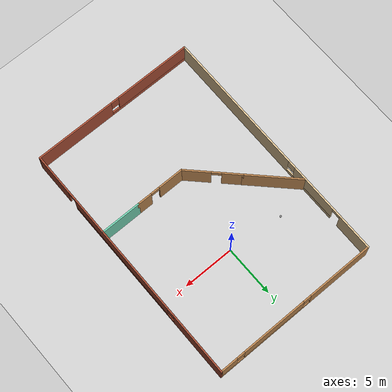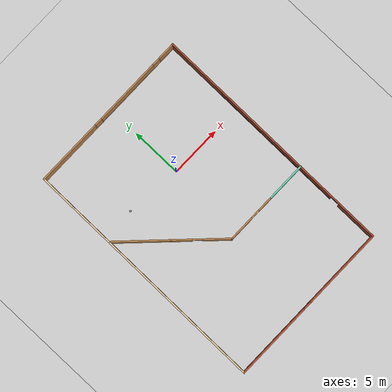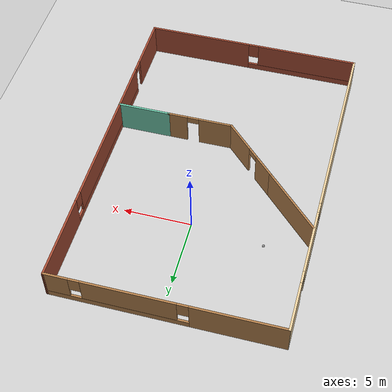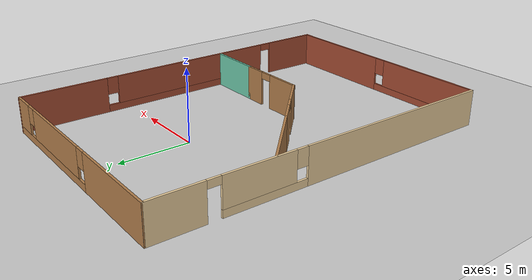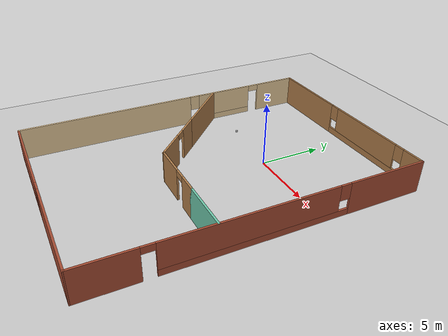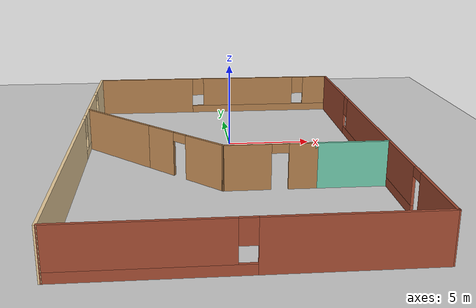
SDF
<sdf version="1.6">
 <world name="default">
  <model name="ground_plane">
   <static>1</static>
   <link name="link">
    <collision name="collision">
     <geometry><plane><normal>0 0 1</normal><size>100 100</size></plane></geometry>
     <surface><friction><ode><mu>100</mu><mu2>50</mu2></ode></friction></surface>
    </collision>
    <visual name="visual">
     <cast_shadows>0</cast_shadows>
     <geometry><plane><normal>0 0 1</normal><size>100 100</size></plane></geometry>
     <material>
      <script><uri>file://media/materials/scripts/gazebo.material</uri><name>Gazebo/Grey</name></script>
     </material>
    </visual>
   </link>
  </model>
  <model name="model_0">
   <pose>-0.478725 -4.35179 0 0 -0 0</pose>
   <link name="Wall_2">
    <pose>0.076605 12.2018 0 0 -0 0</pose>
    <visual name="Wall_2_Visual_0">
     <pose>-4.94334 0 1.25 0 -0 0</pose>
     <geometry><box><size>6.61331 0.15 2.5</size></box></geometry>
     <material>
      <script><uri>file://media/materials/scripts/gazebo.material</uri><name>Gazebo/Wood</name></script>
      <ambient>1 1 1 1</ambient>
     </material>
     <meta><layer>0</layer></meta>
    </visual>
    <collision name="Wall_2_Collision_0">
     <geometry><box><size>6.61331 0.15 2.5</size></box></geometry>
     <pose>-4.94334 0 1.25 0 -0 0</pose>
    </collision>
    <visual name="Wall_2_Visual_1">
     <pose>3.30666 0 0.25 0 -0 0</pose>
     <geometry><box><size>9.88669 0.15 0.5</size></box></geometry>
     <material>
      <script><uri>file://media/materials/scripts/gazebo.material</uri><name>Gazebo/Wood</name></script>
      <ambient>1 1 1 1</ambient>
     </material>
     <meta><layer>0</layer></meta>
    </visual>
    <collision name="Wall_2_Collision_1">
     <geometry><box><size>9.88669 0.15 0.5</size></box></geometry>
     <pose>3.30666 0 0.25 0 -0 0</pose>
    </collision>
    <visual name="Wall_2_Visual_2">
     <pose>2.43911 0 1.5 0 -0 0</pose>
     <geometry><box><size>6.55161 0.15 2</size></box></geometry>
     <material>
      <script><uri>file://media/materials/scripts/gazebo.material</uri><name>Gazebo/Wood</name></script>
      <ambient>1 1 1 1</ambient>
     </material>
     <meta><layer>0</layer></meta>
    </visual>
    <collision name="Wall_2_Collision_2">
     <geometry><box><size>6.55161 0.15 2</size></box></geometry>
     <pose>2.43911 0 1.5 0 -0 0</pose>
    </collision>
    <visual name="Wall_2_Visual_3">
     <pose>7.38246 0 1.5 0 -0 0</pose>
     <geometry><box><size>1.73508 0.15 2</size></box></geometry>
     <material>
      <script><uri>file://media/materials/scripts/gazebo.material</uri><name>Gazebo/Wood</name></script>
      <ambient>1 1 1 1</ambient>
     </material>
     <meta><layer>0</layer></meta>
    </visual>
    <collision name="Wall_2_Collision_3">
     <geometry><box><size>1.73508 0.15 2</size></box></geometry>
     <pose>7.38246 0 1.5 0 -0 0</pose>
    </collision>
    <visual name="Wall_2_Visual_4">
     <pose>-1.23669 0 1.9 0 -0 0</pose>
     <geometry><box><size>0.8 0.15 1.2</size></box></geometry>
     <material>
      <script><uri>file://media/materials/scripts/gazebo.material</uri><name>Gazebo/Wood</name></script>
      <ambient>1 1 1 1</ambient>
     </material>
     <meta><layer>0</layer></meta>
    </visual>
    <collision name="Wall_2_Collision_4">
     <geometry><box><size>0.8 0.15 1.2</size></box></geometry>
     <pose>-1.23669 0 1.9 0 -0 0</pose>
    </collision>
    <visual name="Wall_2_Visual_5">
     <pose>6.11492 0 1.9 0 -0 0</pose>
     <geometry><box><size>0.8 0.15 1.2</size></box></geometry>
     <material>
      <script><uri>file://media/materials/scripts/gazebo.material</uri><name>Gazebo/Wood</name></script>
      <ambient>1 1 1 1</ambient>
     </material>
     <meta><layer>0</layer></meta>
    </visual>
    <collision name="Wall_2_Collision_5">
     <geometry><box><size>0.8 0.15 1.2</size></box></geometry>
     <pose>6.11492 0 1.9 0 -0 0</pose>
    </collision>
   </link>
   <link name="Wall_28">
    <collision name="Wall_28_Collision">
     <geometry><box><size>4 0.15 2.5</size></box></geometry>
     <pose>0 0 1.25 0 -0 0</pose>
    </collision>
    <visual name="Wall_28_Visual">
     <pose>0 0 1.25 0 -0 0</pose>
     <geometry><box><size>4 0.15 2.5</size></box></geometry>
     <material>
      <script><uri>file://media/materials/scripts/gazebo.material</uri><name>Gazebo/Grey</name></script>
      <ambient>0.435294 0.796078 0.67451 1</ambient>
     </material>
     <meta><layer>0</layer></meta>
    </visual>
    <pose>6.25576 -3.37831 0 0 -0 0</pose>
   </link>
   <link name="Wall_3">
    <pose>8.2155 0 0 0 0 -1.57812</pose>
    <visual name="Wall_3_Visual_0">
     <pose>-9.19494 0 1.25 0 -0 0</pose>
     <geometry><box><size>6.16429 0.15 2.5</size></box></geometry>
     <material>
      <script><uri>file://media/materials/scripts/gazebo.material</uri><name>Gazebo/Bricks</name></script>
      <ambient>1 0.333333 0.498039 1</ambient>
     </material>
     <meta><layer>0</layer></meta>
    </visual>
    <collision name="Wall_3_Collision_0">
     <geometry><box><size>6.16429 0.15 2.5</size></box></geometry>
     <pose>-9.19494 0 1.25 0 -0 0</pose>
    </collision>
    <visual name="Wall_3_Visual_1">
     <pose>10.1974 0 1.25 0 -0 0</pose>
     <geometry><box><size>4.15935 0.15 2.5</size></box></geometry>
     <material>
      <script><uri>file://media/materials/scripts/gazebo.material</uri><name>Gazebo/Bricks</name></script>
      <ambient>1 0.333333 0.498039 1</ambient>
     </material>
     <meta><layer>0</layer></meta>
    </visual>
    <collision name="Wall_3_Collision_1">
     <geometry><box><size>4.15935 0.15 2.5</size></box></geometry>
     <pose>10.1974 0 1.25 0 -0 0</pose>
    </collision>
    <visual name="Wall_3_Visual_2">
     <pose>0.552472 0 0.25 0 -0 0</pose>
     <geometry><box><size>13.3305 0.15 0.5</size></box></geometry>
     <material>
      <script><uri>file://media/materials/scripts/gazebo.material</uri><name>Gazebo/Bricks</name></script>
      <ambient>1 0.333333 0.498039 1</ambient>
     </material>
     <meta><layer>0</layer></meta>
    </visual>
    <collision name="Wall_3_Collision_2">
     <geometry><box><size>13.3305 0.15 0.5</size></box></geometry>
     <pose>0.552472 0 0.25 0 -0 0</pose>
    </collision>
    <visual name="Wall_3_Visual_3">
     <pose>0.952472 0 1.5 0 -0 0</pose>
     <geometry><box><size>12.5305 0.15 2</size></box></geometry>
     <material>
      <script><uri>file://media/materials/scripts/gazebo.material</uri><name>Gazebo/Bricks</name></script>
      <ambient>1 0.333333 0.498039 1</ambient>
     </material>
     <meta><layer>0</layer></meta>
    </visual>
    <collision name="Wall_3_Collision_3">
     <geometry><box><size>12.5305 0.15 2</size></box></geometry>
     <pose>0.952472 0 1.5 0 -0 0</pose>
    </collision>
    <visual name="Wall_3_Visual_4">
     <pose>-5.71279 0 1.9 0 -0 0</pose>
     <geometry><box><size>0.8 0.15 1.2</size></box></geometry>
     <material>
      <script><uri>file://media/materials/scripts/gazebo.material</uri><name>Gazebo/Bricks</name></script>
      <ambient>1 0.333333 0.498039 1</ambient>
     </material>
     <meta><layer>0</layer></meta>
    </visual>
    <collision name="Wall_3_Collision_4">
     <geometry><box><size>0.8 0.15 1.2</size></box></geometry>
     <pose>-5.71279 0 1.9 0 -0 0</pose>
    </collision>
    <visual name="Wall_3_Visual_5">
     <pose>7.66774 0 2.25 0 -0 0</pose>
     <geometry><box><size>0.9 0.15 0.5</size></box></geometry>
     <material>
      <script><uri>file://media/materials/scripts/gazebo.material</uri><name>Gazebo/Bricks</name></script>
      <ambient>1 0.333333 0.498039 1</ambient>
     </material>
     <meta><layer>0</layer></meta>
    </visual>
    <collision name="Wall_3_Collision_5">
     <geometry><box><size>0.9 0.15 0.5</size></box></geometry>
     <pose>7.66774 0 2.25 0 -0 0</pose>
    </collision>
   </link>
   <link name="Wall_4">
    <pose>-0.048813 -12.2018 0 0 -0 3.14159</pose>
    <visual name="Wall_4_Visual_0">
     <pose>-4.24319 0 1.25 0 -0 0</pose>
     <geometry><box><size>8.01363 0.15 2.5</size></box></geometry>
     <material>
      <script><uri>file://media/materials/scripts/gazebo.material</uri><name>Gazebo/Bricks</name></script>
      <ambient>1 1 1 1</ambient>
     </material>
     <meta><layer>0</layer></meta>
    </visual>
    <collision name="Wall_4_Collision_0">
     <geometry><box><size>8.01363 0.15 2.5</size></box></geometry>
     <pose>-4.24319 0 1.25 0 -0 0</pose>
    </collision>
    <visual name="Wall_4_Visual_1">
     <pose>4.00681 0 0.25 0 -0 0</pose>
     <geometry><box><size>8.48637 0.15 0.5</size></box></geometry>
     <material>
      <script><uri>file://media/materials/scripts/gazebo.material</uri><name>Gazebo/Bricks</name></script>
      <ambient>1 1 1 1</ambient>
     </material>
     <meta><layer>0</layer></meta>
    </visual>
    <collision name="Wall_4_Collision_1">
     <geometry><box><size>8.48637 0.15 0.5</size></box></geometry>
     <pose>4.00681 0 0.25 0 -0 0</pose>
    </collision>
    <visual name="Wall_4_Visual_2">
     <pose>4.40681 0 1.5 0 -0 0</pose>
     <geometry><box><size>7.68637 0.15 2</size></box></geometry>
     <material>
      <script><uri>file://media/materials/scripts/gazebo.material</uri><name>Gazebo/Bricks</name></script>
      <ambient>1 1 1 1</ambient>
     </material>
     <meta><layer>0</layer></meta>
    </visual>
    <collision name="Wall_4_Collision_2">
     <geometry><box><size>7.68637 0.15 2</size></box></geometry>
     <pose>4.40681 0 1.5 0 -0 0</pose>
    </collision>
    <visual name="Wall_4_Visual_3">
     <pose>0.163631 0 1.9 0 -0 0</pose>
     <geometry><box><size>0.8 0.15 1.2</size></box></geometry>
     <material>
      <script><uri>file://media/materials/scripts/gazebo.material</uri><name>Gazebo/Bricks</name></script>
      <ambient>1 1 1 1</ambient>
     </material>
     <meta><layer>0</layer></meta>
    </visual>
    <collision name="Wall_4_Collision_3">
     <geometry><box><size>0.8 0.15 1.2</size></box></geometry>
     <pose>0.163631 0 1.9 0 -0 0</pose>
    </collision>
   </link>
   <link name="Wall_5">
    <pose>-8.20156 0 0 0 -0 1.56234</pose>
    <visual name="Wall_5_Visual_0">
     <pose>-5.11226 0 1.25 0 -0 0</pose>
     <geometry><box><size>14.3291 0.15 2.5</size></box></geometry>
     <material>
      <script><uri>file://media/materials/scripts/gazebo.material</uri><name>Gazebo/Grey</name></script>
      <ambient>0.921569 0.807843 0.615686 1</ambient>
     </material>
     <meta><layer>0</layer></meta>
    </visual>
    <collision name="Wall_5_Collision_0">
     <geometry><box><size>14.3291 0.15 2.5</size></box></geometry>
     <pose>-5.11226 0 1.25 0 -0 0</pose>
    </collision>
    <visual name="Wall_5_Visual_1">
     <pose>10.4712 0 1.25 0 -0 0</pose>
     <geometry><box><size>3.61121 0.15 2.5</size></box></geometry>
     <material>
      <script><uri>file://media/materials/scripts/gazebo.material</uri><name>Gazebo/Grey</name></script>
      <ambient>0.921569 0.807843 0.615686 1</ambient>
     </material>
     <meta><layer>0</layer></meta>
    </visual>
    <collision name="Wall_5_Collision_1">
     <geometry><box><size>3.61121 0.15 2.5</size></box></geometry>
     <pose>10.4712 0 1.25 0 -0 0</pose>
    </collision>
    <visual name="Wall_5_Visual_2">
     <pose>4.90895 0 0.25 0 -0 0</pose>
     <geometry><box><size>5.71331 0.15 0.5</size></box></geometry>
     <material>
      <script><uri>file://media/materials/scripts/gazebo.material</uri><name>Gazebo/Grey</name></script>
      <ambient>0.921569 0.807843 0.615686 1</ambient>
     </material>
     <meta><layer>0</layer></meta>
    </visual>
    <collision name="Wall_5_Collision_2">
     <geometry><box><size>5.71331 0.15 0.5</size></box></geometry>
     <pose>4.90895 0 0.25 0 -0 0</pose>
    </collision>
    <visual name="Wall_5_Visual_3">
     <pose>5.30895 0 1.5 0 -0 0</pose>
     <geometry><box><size>4.91331 0.15 2</size></box></geometry>
     <material>
      <script><uri>file://media/materials/scripts/gazebo.material</uri><name>Gazebo/Grey</name></script>
      <ambient>0.921569 0.807843 0.615686 1</ambient>
     </material>
     <meta><layer>0</layer></meta>
    </visual>
    <collision name="Wall_5_Collision_3">
     <geometry><box><size>4.91331 0.15 2</size></box></geometry>
     <pose>5.30895 0 1.5 0 -0 0</pose>
    </collision>
    <visual name="Wall_5_Visual_4">
     <pose>2.45229 0 1.9 0 -0 0</pose>
     <geometry><box><size>0.8 0.15 1.2</size></box></geometry>
     <material>
      <script><uri>file://media/materials/scripts/gazebo.material</uri><name>Gazebo/Grey</name></script>
      <ambient>0.921569 0.807843 0.615686 1</ambient>
     </material>
     <meta><layer>0</layer></meta>
    </visual>
    <collision name="Wall_5_Collision_4">
     <geometry><box><size>0.8 0.15 1.2</size></box></geometry>
     <pose>2.45229 0 1.9 0 -0 0</pose>
    </collision>
    <visual name="Wall_5_Visual_5">
     <pose>8.2156 0 2.25 0 -0 0</pose>
     <geometry><box><size>0.9 0.15 0.5</size></box></geometry>
     <material>
      <script><uri>file://media/materials/scripts/gazebo.material</uri><name>Gazebo/Grey</name></script>
      <ambient>0.921569 0.807843 0.615686 1</ambient>
     </material>
     <meta><layer>0</layer></meta>
    </visual>
    <collision name="Wall_5_Collision_5">
     <geometry><box><size>0.9 0.15 0.5</size></box></geometry>
     <pose>8.2156 0 2.25 0 -0 0</pose>
    </collision>
   </link>
   <link name="Wall_7">
    <collision name="Wall_7_Collision">
     <geometry><box><size>5.5 0.15 2.5</size></box></geometry>
     <pose>0 0 1.25 0 -0 0</pose>
    </collision>
    <visual name="Wall_7_Visual">
     <pose>0 0 1.25 0 -0 0</pose>
     <geometry><box><size>5.5 0.15 2.5</size></box></geometry>
     <material>
      <script><uri>file://media/materials/scripts/gazebo.material</uri><name>Gazebo/Wood</name></script>
      <ambient>0.996078 0.47451 0.0196078 1</ambient>
     </material>
     <meta><layer>0</layer></meta>
    </visual>
    <pose>-6.19377 2.29622 0 0 0 -0.785398</pose>
   </link>
   <link name="Wall_8">
    <pose>-2.41075 -1.4868 0 0 0 -0.785398</pose>
    <visual name="Wall_8_Visual_0">
     <pose>-1.78989 0 1.25 0 -0 0</pose>
     <geometry><box><size>1.92023 0.15 2.5</size></box></geometry>
     <material>
      <script><uri>file://media/materials/scripts/gazebo.material</uri><name>Gazebo/Wood</name></script>
      <ambient>0.996078 0.47451 0.0196078 1</ambient>
     </material>
     <meta><layer>0</layer></meta>
    </visual>
    <collision name="Wall_8_Collision_0">
     <geometry><box><size>1.92023 0.15 2.5</size></box></geometry>
     <pose>-1.78989 0 1.25 0 -0 0</pose>
    </collision>
    <visual name="Wall_8_Visual_1">
     <pose>1.41011 0 1.25 0 -0 0</pose>
     <geometry><box><size>2.67977 0.15 2.5</size></box></geometry>
     <material>
      <script><uri>file://media/materials/scripts/gazebo.material</uri><name>Gazebo/Wood</name></script>
      <ambient>0.996078 0.47451 0.0196078 1</ambient>
     </material>
     <meta><layer>0</layer></meta>
    </visual>
    <collision name="Wall_8_Collision_1">
     <geometry><box><size>2.67977 0.15 2.5</size></box></geometry>
     <pose>1.41011 0 1.25 0 -0 0</pose>
    </collision>
    <visual name="Wall_8_Visual_2">
     <pose>-0.379775 0 2.25 0 -0 0</pose>
     <geometry><box><size>0.9 0.15 0.5</size></box></geometry>
     <material>
      <script><uri>file://media/materials/scripts/gazebo.material</uri><name>Gazebo/Wood</name></script>
      <ambient>0.996078 0.47451 0.0196078 1</ambient>
     </material>
     <meta><layer>0</layer></meta>
    </visual>
    <collision name="Wall_8_Collision_2">
     <geometry><box><size>0.9 0.15 0.5</size></box></geometry>
     <pose>-0.379775 0 2.25 0 -0 0</pose>
    </collision>
   </link>
   <link name="Wall_9">
    <pose>1.90576 -3.37831 0 0 -0 0</pose>
    <visual name="Wall_9_Visual_0">
     <pose>-1.20906 0 1.25 0 -0 0</pose>
     <geometry><box><size>2.58187 0.15 2.5</size></box></geometry>
     <material>
      <script><uri>file://media/materials/scripts/gazebo.material</uri><name>Gazebo/Wood</name></script>
      <ambient>0.996078 0.47451 0.0196078 1</ambient>
     </material>
     <meta><layer>0</layer></meta>
    </visual>
    <collision name="Wall_9_Collision_0">
     <geometry><box><size>2.58187 0.15 2.5</size></box></geometry>
     <pose>-1.20906 0 1.25 0 -0 0</pose>
    </collision>
    <visual name="Wall_9_Visual_1">
     <pose>1.74094 0 1.25 0 -0 0</pose>
     <geometry><box><size>1.51813 0.15 2.5</size></box></geometry>
     <material>
      <script><uri>file://media/materials/scripts/gazebo.material</uri><name>Gazebo/Wood</name></script>
      <ambient>0.996078 0.47451 0.0196078 1</ambient>
     </material>
     <meta><layer>0</layer></meta>
    </visual>
    <collision name="Wall_9_Collision_1">
     <geometry><box><size>1.51813 0.15 2.5</size></box></geometry>
     <pose>1.74094 0 1.25 0 -0 0</pose>
    </collision>
    <visual name="Wall_9_Visual_2">
     <pose>0.531874 0 2.25 0 -0 0</pose>
     <geometry><box><size>0.9 0.15 0.5</size></box></geometry>
     <material>
      <script><uri>file://media/materials/scripts/gazebo.material</uri><name>Gazebo/Wood</name></script>
      <ambient>0.996078 0.47451 0.0196078 1</ambient>
     </material>
     <meta><layer>0</layer></meta>
    </visual>
    <collision name="Wall_9_Collision_2">
     <geometry><box><size>0.9 0.15 0.5</size></box></geometry>
     <pose>0.531874 0 2.25 0 -0 0</pose>
    </collision>
   </link>
   <static>1</static>
  </model>
  <model name="my_ball">
   <link name="link_0">
    <inertial>
     <mass>1</mass>
     <inertia><ixx>0.1</ixx><ixy>0</ixy><ixz>0</ixz><iyy>0.1</iyy><iyz>0</iyz><izz>0.1</izz></inertia>
    </inertial>
    <visual name="visual">
     <geometry><sphere><radius>0.1</radius></sphere></geometry>
     <material>
      <lighting>1</lighting>
      <script><uri>file://media/materials/scripts/gazebo.material</uri><name>Gazebo/Grey</name></script>
      <shader type="pixel"><normal_map>__default__</normal_map></shader>
      <ambient>1 1 1 1</ambient>
      <diffuse>1 1 1 1</diffuse>
      <specular>1 1 1 1</specular>
      <emissive>1 1 1 1</emissive>
     </material>
    </visual>
    <collision name="collision">
     <geometry><sphere><radius>0.1</radius></sphere></geometry>
     <surface>
      <friction>
       <ode><mu>1</mu><mu2>1</mu2><fdir1>0 0 0</fdir1><slip1>0</slip1><slip2>0</slip2></ode>
       <torsional>
        <coefficient>1</coefficient>
        <patch_radius>0</patch_radius>
        <surface_radius>0</surface_radius>
        <use_patch_radius>1</use_patch_radius>
        <ode><slip>0</slip></ode>
       </torsional>
      </friction>
      <bounce><restitution_coefficient>0</restitution_coefficient><threshold>1e+06</threshold></bounce>
      <contact>
       <collide_without_contact>0</collide_without_contact>
       <collide_without_contact_bitmask>1</collide_without_contact_bitmask>
       <collide_bitmask>1</collide_bitmask>
       <ode>
        <soft_cfm>0</soft_cfm>
        <soft_erp>0.2</soft_erp>
        <kp>1e+13</kp>
        <kd>1</kd>
        <max_vel>0.01</max_vel>
        <min_depth>0</min_depth>
       </ode>
       <bullet>
        <split_impulse>1</split_impulse>
        <split_impulse_penetration_threshold>-0.01</split_impulse_penetration_threshold>
        <soft_cfm>0</soft_cfm>
        <soft_erp>0.2</soft_erp>
        <kp>1e+13</kp>
        <kd>1</kd>
       </bullet>
      </contact>
     </surface>
    </collision>
   </link>
   <static>0</static>
   <pose>-5.3696 0.549381 0.1 0 -0 0</pose>
  </model>
 </world>
</sdf>
